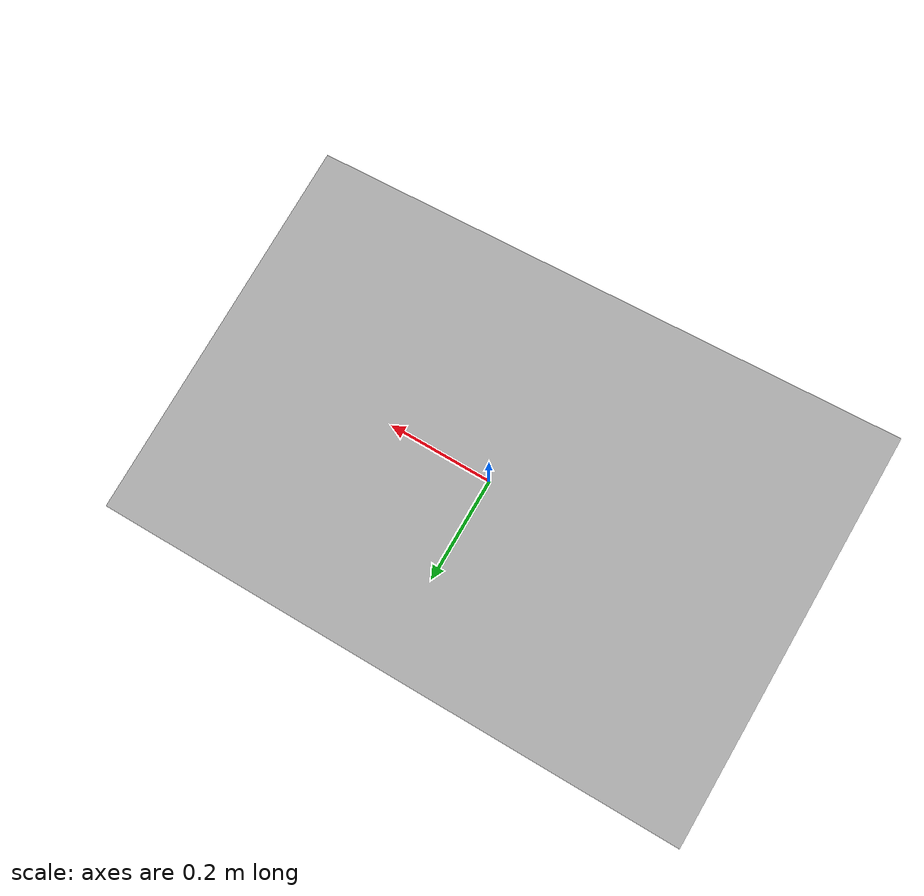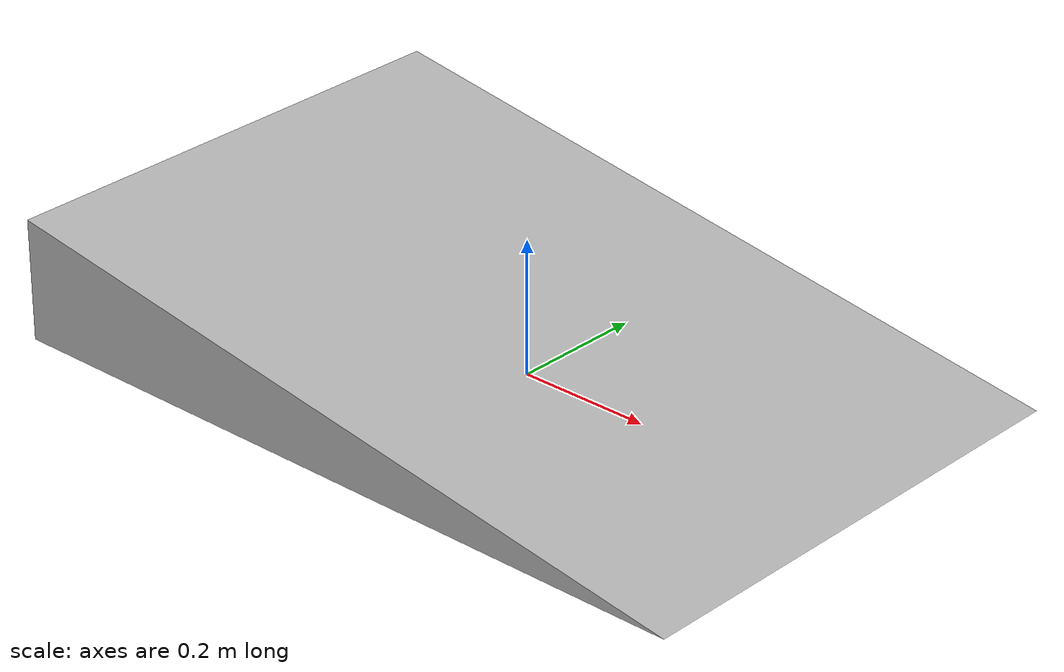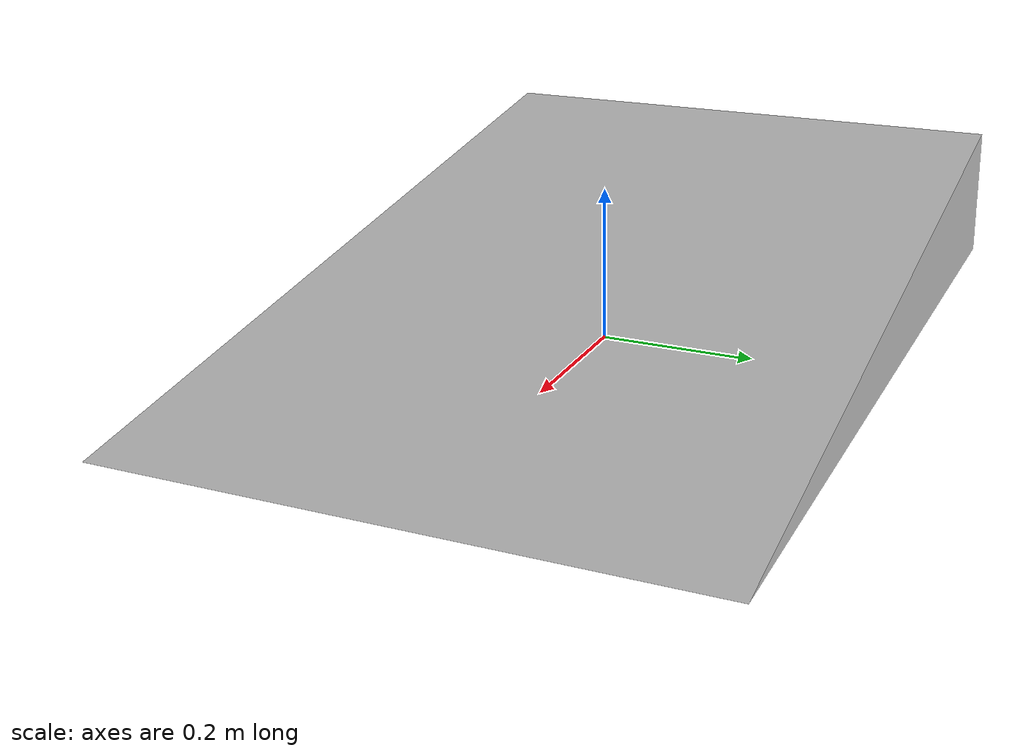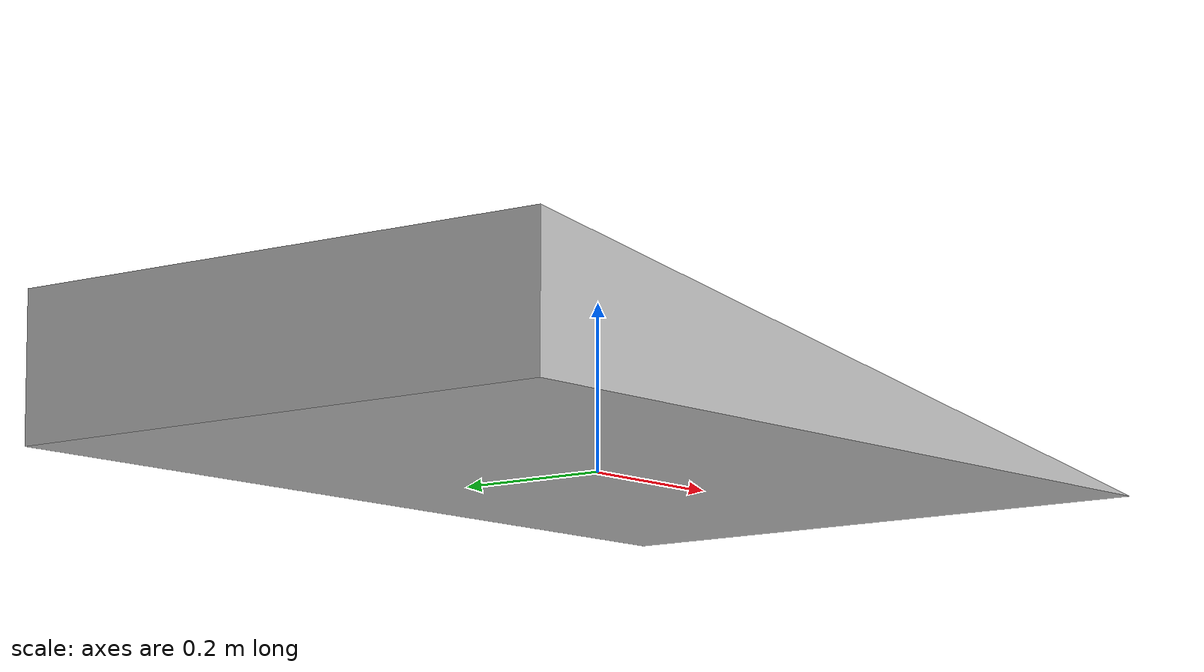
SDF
<?xml version="1.0" ?>
<sdf version="1.4">
	<model name="10_degree_ramp">
		<static>true</static>
		<link name="link">
			<pose>0 0 0 0 0 0</pose>
			<collision name="collision">
				<geometry>
					<mesh>
						<uri>model://ramp_45/mesh/ramp_45.dae</uri>
						<scale>0.56 0.375 0.09</scale>
					</mesh>
				</geometry>
				<surface>
					<friction>
						<ode>
							<mu>10</mu>
							<mu2>10</mu2>
						</ode>
					</friction>
				</surface>
			</collision>
			<visual name="visual">
				<geometry>
					<mesh>
						<uri>model://ramp_45/mesh/ramp_45.dae</uri>
						<scale>0.56 0.375 0.09</scale>
					</mesh>
				</geometry>
			</visual>
		</link>
	</model>
</sdf>
